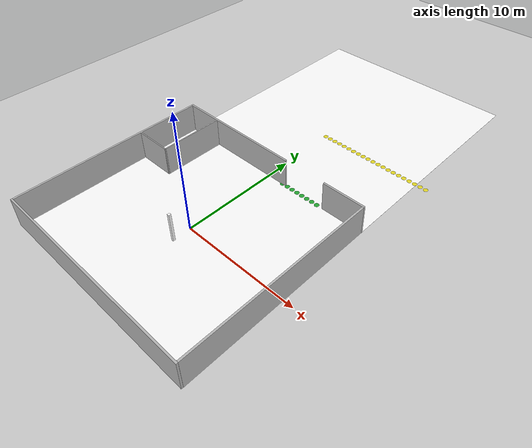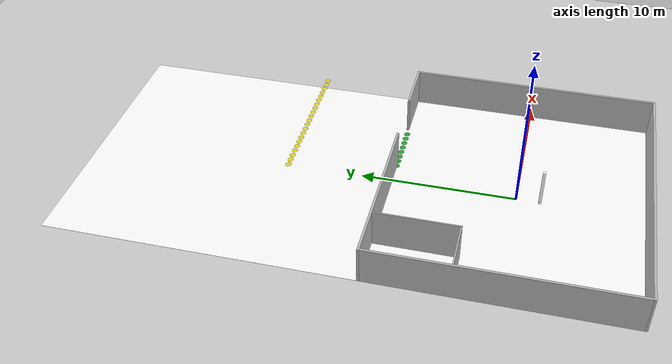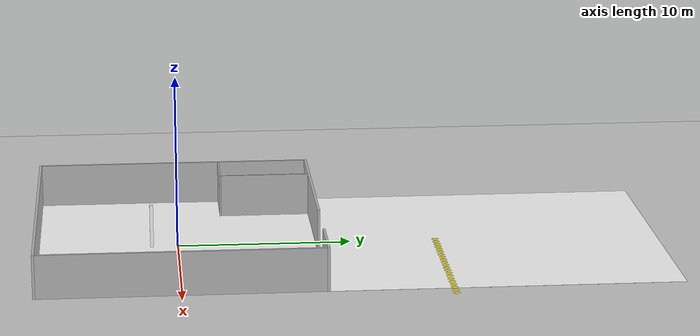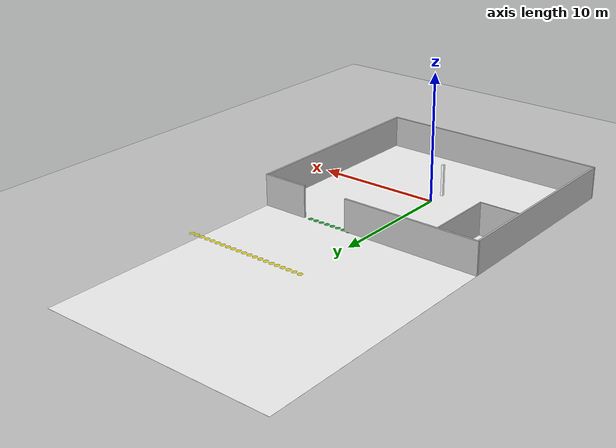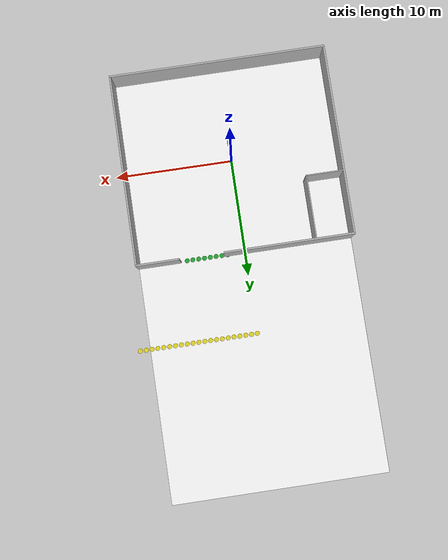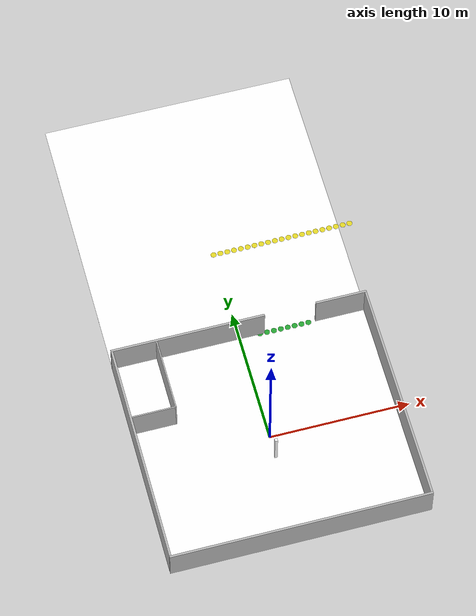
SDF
<sdf version="1.6">
 <world name="default">
  <include><uri>model://ground_plane</uri></include>
  <include><uri>model://sun</uri></include>
  <include><uri>model://highbay</uri></include>
  <include><uri>model://loop_1</uri></include>
 </world>
</sdf>

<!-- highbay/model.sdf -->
<sdf version="1.6">
<model name='highbay'>
  <static>true</static>
  <pose frame=''>0 0 0 0 -0 0</pose>

    <link name='Wall_1'>
      <collision name='Wall_1_Collision'>
        <geometry>
          <box>
            <size>3.6576 .15239 2.5</size>
          </box>
        </geometry>
        <pose frame=''>0 0 1.25 0 -0 0</pose>
      </collision>
      <visual name='Wall_1_Visual'>
        <pose frame=''>0 0 1.25 0 -0 0</pose>
        <geometry>
          <box>
            <size>3.6576 .15239 2.5</size>
          </box>
        </geometry>
        <material>
          <script>

            <uri>model://highbay/materials/scripts</uri>
            <uri>model://highbay/materials/textures</uri>
            <name>RepeatedTexture</name>

          </script>
        </material>
      </visual>
      <pose frame=''>7.323594 8.05 0 0 -0 0</pose>
    </link>

    <link name='Wall_1_5'>
      <collision name='Wall_1_5_Collision'>
        <geometry>
          <box>
            <size>10.9728 .15239 2.5</size>
          </box>
        </geometry>
        <pose frame=''>0 0 1.25 0 -0 0</pose>
      </collision>
      <visual name='Wall_1_5_Visual'>
        <pose frame=''>0 0 1.25 0 -0 0</pose>
        <geometry>
          <box>
            <size>10.9728 .15239 2.5</size>
          </box>
        </geometry>
        <material>
          <script>
            <uri>model://highbay/materials/scripts</uri>
            <uri>model://highbay/materials/textures</uri>
            <name>RepeatedTexture</name>
          </script>
        </material>
      </visual>
      <pose frame=''>-3.665994 8.05 0 0 -0 0</pose>
    </link>

    <link name='Wall_2'>
      <collision name='Wall_2_Collision'>
        <geometry>
          <box>
            <size>15.954375 .15239 2.5</size>
          </box>
        </geometry>
        <pose frame=''>0 0 1.25 0 -0 0</pose>
      </collision>
      <visual name='Wall_2_Visual'>
        <pose frame=''>0 0 1.25 0 -0 0</pose>
        <geometry>
          <box>
            <size>15.954375 .15239 2.5</size>
          </box>
        </geometry>
        <material>
          <script>
            <uri>model://highbay/materials/scripts</uri>
            <uri>model://highbay/materials/textures</uri>
            <name>RepeatedTexture</name>
          </script>
        </material>
      </visual>
      <pose frame=''>-9.076199 0 0 0 -0 1.57079632679</pose>
    </link>

    <link name='Wall_3'>
      <collision name='Wall_3_Collision'>
        <geometry>
          <box>
            <size>18.288 .15239 2.5</size>
          </box>
        </geometry>
        <pose frame=''>0 0 1.25 0 -0 0</pose>
      </collision>
      <visual name='Wall_3_Visual'>
        <pose frame=''>0 0 1.25 0 -0 0</pose>
        <geometry>
          <box>
            <size>18.288 .15239 2.5</size>
          </box>
        </geometry>
        <material>
          <script>
            <uri>model://highbay/materials/scripts</uri>
            <uri>model://highbay/materials/textures</uri>
            <name>RepeatedTexture</name>
          </script>
        </material>
      </visual>
      <pose frame=''>0 -8.05 0 0 -0 0</pose>
    </link>

    <link name='Wall_4'>
      <collision name='Wall_4_Collision'>
        <geometry>
          <box>
            <size>15.954375 .15239 2.5</size>
          </box>
        </geometry>
        <pose frame=''>0 0 1.25 0 -0 0</pose>
      </collision>
      <visual name='Wall_4_Visual'>
        <pose frame=''>0 0 1.25 0 -0 0</pose>
        <geometry>
          <box>
            <size>15.954375 .15239 2.5</size>
          </box>
        </geometry>
        <material>
          <script>
            <uri>model://highbay/materials/scripts</uri>
            <uri>model://highbay/materials/textures</uri>
            <name>RepeatedTexture</name>
          </script>
        </material>
      </visual>
      <pose frame=''>9.076199 0 0 0 -0 1.57079632679</pose>
    </link>

    <link name='Wall_5'>
      <collision name='Wall_5_Collision'>
        <geometry>
          <box>
            <size>3.07975 .092075 2.5</size>
          </box>
        </geometry>
        <pose frame=''>0 0 1.25 0 -0 0</pose>
      </collision>
      <visual name='Wall_5_Visual'>
        <pose frame=''>0 0 1.25 0 -0 0</pose>
        <geometry>
          <box>
            <size>3.07975 .092075 2.5</size>
          </box>
        </geometry>
        <material>
          <script>
            <uri>model://highbay/materials/scripts</uri>
            <uri>model://highbay/materials/textures</uri>
            <name>RepeatedTexture</name>
          </script>
        </material>
      </visual>
      <pose frame=''>-7.460129 2.7144175 0 0 -0 0</pose>
    </link>

  <link name='Wall_6'>
    <collision name='Wall_6_Collision'>
      <geometry>
        <box>
          <size>.092075 .092075 2.5</size>
        </box>
      </geometry>
      <pose frame=''>0 0 1.25 0 -0 0</pose>
    </collision>
    <visual name='Wall_6_Visual'>
      <pose frame=''>0 0 1.25 0 -0 0</pose>
      <geometry>
        <box>
          <size>.092075 .092075 2.5</size>
        </box>
      </geometry>
      <material>
        <script>
          <uri>model://highbay/materials/scripts</uri>
          <uri>model://highbay/materials/textures</uri>
          <name>RepeatedTexture</name>
        </script>
      </material>
    </visual>
    <pose frame=''>-5.911379 2.7144175 0 0 -0 1.5708</pose>
  </link>

  <link name='Wall_7'>
    <collision name='Wall_7_Collision'>
      <geometry>
        <box>
          <size>5.21335 .092075 2.5</size>
        </box>
      </geometry>
      <pose frame=''>0 0 1.25 0 -0 0</pose>
    </collision>
    <visual name='Wall_7_Visual'>
      <pose frame=''>0 0 1.25 0 -0 0</pose>
      <geometry>
        <box>
          <size>5.21335 .092075 2.5</size>
        </box>
      </geometry>
      <material>
        <script>
          <uri>model://highbay/materials/scripts</uri>
          <uri>model://highbay/materials/textures</uri>
          <name>RepeatedTexture</name>
        </script>
      </material>
    </visual>
    <pose frame=''>-5.911379 5.36713 0 0 -0 1.5708</pose>
  </link>

  <link name='Pillar'>
    <collision name='Pillar_Collision'>
      <geometry>
        <box>
          <size>0.2 0.2 2.5</size>
        </box>
      </geometry>
      <pose frame=''>0 0 1.25 0 -0 0</pose>
    </collision>
    <visual name='Pillar_Visual'>
      <pose frame=''>0 0 1.25 0 -0 0</pose>
      <geometry>
        <box>
          <size>0.2 0.2 2.5</size>
        </box>
      </geometry>
      <material>
        <script>
          <uri>model://highbay/materials/scripts</uri>
          <uri>model://highbay/materials/textures</uri>
          <name>RepeatedTexture</name>
        </script>
        <ambient>1 1 1 1</ambient>
      </material>
      <meta>
        <layer>0</layer>
      </meta>
    </visual>
    <pose frame=''>.008394 -1.5 0 0 -0 -1.5708</pose>
  </link>

  <link name='Floor'>
    <collision name='Floor_Collision'>
      <geometry>
        <box>
          <size>18.288  36 .005</size>
        </box>
      </geometry>
      <pose frame=''>0 10 1.25 0 -0 0</pose>
    </collision>
    <visual name='Floor_Visual'>
      <pose frame=''>0 10 1.25 0 -0 0</pose>
      <geometry>
        <box>
          <size>18.288 36 .005</size>
        </box>
      </geometry>
      <material>
        <script>
          <uri>model://highbay/materials/scripts</uri>
          <uri>model://highbay/materials/textures</uri>
          <name>RepeatedFloor</name>
        </script>
        <ambient>1 1 1 1</ambient>
      </material>
      <meta>
        <layer>0</layer>
      </meta>
    </visual>
    <pose frame=''>0 0 -1.25 0 -0 0</pose>
  </link>

</model>
</sdf>

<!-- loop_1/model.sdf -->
<sdf version="1.6">
	<model name="highbay_loop1">
		<static>true</static>
		<link name="inner_loop">

			<visual name="point0">
				<pose>0 15 0.01 0 0 0</pose>
				<geometry>
					<cylinder>
						<radius>0.2</radius>
						<length>0.001</length>
					</cylinder>
				</geometry>
				<material>
					<script>
						<uri>file://media/materials/scripts/gazebo.material</uri>
						<name>Gazebo/Yellow</name>
					</script>
				</material>
			</visual>

			<visual name="point1">
				<pose>0.5 15 0.01 0 0 0</pose>
				<geometry>
					<cylinder>
						<radius>0.2</radius>
						<length>0.001</length>
					</cylinder>
				</geometry>
				<material>
					<script>
						<uri>file://media/materials/scripts/gazebo.material</uri>
						<name>Gazebo/Yellow</name>
					</script>
				</material>
			</visual>

			<visual name="point2">
				<pose>1 15 0.01 0 0 0</pose>
				<geometry>
					<cylinder>
						<radius>0.2</radius>
						<length>0.001</length>
					</cylinder>
				</geometry>
				<material>
					<script>
						<uri>file://media/materials/scripts/gazebo.material</uri>
						<name>Gazebo/Yellow</name>
					</script>
				</material>
			</visual>

			<visual name="point3">
				<pose>1.5 15 0.01 0 0 0</pose>
				<geometry>
					<cylinder>
						<radius>0.2</radius>
						<length>0.001</length>
					</cylinder>
				</geometry>
				<material>
					<script>
						<uri>file://media/materials/scripts/gazebo.material</uri>
						<name>Gazebo/Yellow</name>
					</script>
				</material>
			</visual>

			<visual name="point4">
				<pose>2 15 0.01 0 0 0</pose>
				<geometry>
					<cylinder>
						<radius>0.2</radius>
						<length>0.001</length>
					</cylinder>
				</geometry>
				<material>
					<script>
						<uri>file://media/materials/scripts/gazebo.material</uri>
						<name>Gazebo/Yellow</name>
					</script>
				</material>
			</visual>

			<visual name="point5">
				<pose>2.5 15 0.01 0 0 0</pose>
				<geometry>
					<cylinder>
						<radius>0.2</radius>
						<length>0.001</length>
					</cylinder>
				</geometry>
				<material>
					<script>
						<uri>file://media/materials/scripts/gazebo.material</uri>
						<name>Gazebo/Yellow</name>
					</script>
				</material>
			</visual>

			<visual name="point6">
				<pose>3 15 0.01 0 0 0</pose>
				<geometry>
					<cylinder>
						<radius>0.2</radius>
						<length>0.001</length>
					</cylinder>
				</geometry>
				<material>
					<script>
						<uri>file://media/materials/scripts/gazebo.material</uri>
						<name>Gazebo/Yellow</name>
					</script>
				</material>
			</visual>

			<visual name="point7">
				<pose>3.5 15 0.01 0 0 0</pose>
				<geometry>
					<cylinder>
						<radius>0.2</radius>
						<length>0.001</length>
					</cylinder>
				</geometry>
				<material>
					<script>
						<uri>file://media/materials/scripts/gazebo.material</uri>
						<name>Gazebo/Yellow</name>
					</script>
				</material>
			</visual>

			<visual name="point8">
				<pose>4 15 0.01 0 0 0</pose>
				<geometry>
					<cylinder>
						<radius>0.2</radius>
						<length>0.001</length>
					</cylinder>
				</geometry>
				<material>
					<script>
						<uri>file://media/materials/scripts/gazebo.material</uri>
						<name>Gazebo/Yellow</name>
					</script>
				</material>
			</visual>

			<visual name="point9">
				<pose>4.5 15 0.01 0 0 0</pose>
				<geometry>
					<cylinder>
						<radius>0.2</radius>
						<length>0.001</length>
					</cylinder>
				</geometry>
				<material>
					<script>
						<uri>file://media/materials/scripts/gazebo.material</uri>
						<name>Gazebo/Yellow</name>
					</script>
				</material>
			</visual>

			<visual name="point10">
				<pose>5 15 0.01 0 0 0</pose>
				<geometry>
					<cylinder>
						<radius>0.2</radius>
						<length>0.001</length>
					</cylinder>
				</geometry>
				<material>
					<script>
						<uri>file://media/materials/scripts/gazebo.material</uri>
						<name>Gazebo/Yellow</name>
					</script>
				</material>
			</visual>

			<visual name="point11">
				<pose>5.5 15 0.01 0 0 0</pose>
				<geometry>
					<cylinder>
						<radius>0.2</radius>
						<length>0.001</length>
					</cylinder>
				</geometry>
				<material>
					<script>
						<uri>file://media/materials/scripts/gazebo.material</uri>
						<name>Gazebo/Yellow</name>
					</script>
				</material>
			</visual>

			<visual name="point12">
				<pose>6 15 0.01 0 0 0</pose>
				<geometry>
					<cylinder>
						<radius>0.2</radius>
						<length>0.001</length>
					</cylinder>
				</geometry>
				<material>
					<script>
						<uri>file://media/materials/scripts/gazebo.material</uri>
						<name>Gazebo/Yellow</name>
					</script>
				</material>
			</visual>

			<visual name="point13">
				<pose>6.5 15 0.01 0 0 0</pose>
				<geometry>
					<cylinder>
						<radius>0.2</radius>
						<length>0.001</length>
					</cylinder>
				</geometry>
				<material>
					<script>
						<uri>file://media/materials/scripts/gazebo.material</uri>
						<name>Gazebo/Yellow</name>
					</script>
				</material>
			</visual>

			<visual name="point14">
				<pose>7 15 0.01 0 0 0</pose>
				<geometry>
					<cylinder>
						<radius>0.2</radius>
						<length>0.001</length>
					</cylinder>
				</geometry>
				<material>
					<script>
						<uri>file://media/materials/scripts/gazebo.material</uri>
						<name>Gazebo/Yellow</name>
					</script>
				</material>
			</visual>

			<visual name="point15">
				<pose>7.5 15 0.01 0 0 0</pose>
				<geometry>
					<cylinder>
						<radius>0.2</radius>
						<length>0.001</length>
					</cylinder>
				</geometry>
				<material>
					<script>
						<uri>file://media/materials/scripts/gazebo.material</uri>
						<name>Gazebo/Yellow</name>
					</script>
				</material>
			</visual>

			<visual name="point16">
				<pose>8 15 0.01 0 0 0</pose>
				<geometry>
					<cylinder>
						<radius>0.2</radius>
						<length>0.001</length>
					</cylinder>
				</geometry>
				<material>
					<script>
						<uri>file://media/materials/scripts/gazebo.material</uri>
						<name>Gazebo/Yellow</name>
					</script>
				</material>
			</visual>

			<visual name="point17">
				<pose>8.5 15 0.01 0 0 0</pose>
				<geometry>
					<cylinder>
						<radius>0.2</radius>
						<length>0.001</length>
					</cylinder>
				</geometry>
				<material>
					<script>
						<uri>file://media/materials/scripts/gazebo.material</uri>
						<name>Gazebo/Yellow</name>
					</script>
				</material>
			</visual>

			<visual name="point18">
				<pose>9 15 0.01 0 0 0</pose>
				<geometry>
					<cylinder>
						<radius>0.2</radius>
						<length>0.001</length>
					</cylinder>
				</geometry>
				<material>
					<script>
						<uri>file://media/materials/scripts/gazebo.material</uri>
						<name>Gazebo/Yellow</name>
					</script>
				</material>
			</visual>

			<visual name="point19">
				<pose>9.5 15 0.01 0 0 0</pose>
				<geometry>
					<cylinder>
						<radius>0.2</radius>
						<length>0.001</length>
					</cylinder>
				</geometry>
				<material>
					<script>
						<uri>file://media/materials/scripts/gazebo.material</uri>
						<name>Gazebo/Yellow</name>
					</script>
				</material>
			</visual>

			<visual name="point20">
				<pose>10 15 0.01 0 0 0</pose>
				<geometry>
					<cylinder>
						<radius>0.2</radius>
						<length>0.001</length>
					</cylinder>
				</geometry>
				<material>
					<script>
						<uri>file://media/materials/scripts/gazebo.material</uri>
						<name>Gazebo/Yellow</name>
					</script>
				</material>
			</visual>

			<visual name="entry0">
				<pose>5 8 0.01 0 0 0</pose>
				<geometry>
					<cylinder>
						<radius>0.2</radius>
						<length>0.001</length>
					</cylinder>
				</geometry>
				<material>
					<script>
						<uri>file://media/materials/scripts/gazebo.material</uri>
						<name>Gazebo/Green</name>
					</script>
				</material>
			</visual>

			<visual name="entry1">
				<pose>4.5 8 0.01 0 0 0</pose>
				<geometry>
					<cylinder>
						<radius>0.2</radius>
						<length>0.001</length>
					</cylinder>
				</geometry>
				<material>
					<script>
						<uri>file://media/materials/scripts/gazebo.material</uri>
						<name>Gazebo/Green</name>
					</script>
				</material>
			</visual>

			<visual name="entry2">
				<pose>4 8 0.01 0 0 0</pose>
				<geometry>
					<cylinder>
						<radius>0.2</radius>
						<length>0.001</length>
					</cylinder>
				</geometry>
				<material>
					<script>
						<uri>file://media/materials/scripts/gazebo.material</uri>
						<name>Gazebo/Green</name>
					</script>
				</material>
			</visual>

			<visual name="entry3">
				<pose>3.5 8 0.01 0 0 0</pose>
				<geometry>
					<cylinder>
						<radius>0.2</radius>
						<length>0.001</length>
					</cylinder>
				</geometry>
				<material>
					<script>
						<uri>file://media/materials/scripts/gazebo.material</uri>
						<name>Gazebo/Green</name>
					</script>
				</material>
			</visual>

			<visual name="entry4">
				<pose>3 8 0.01 0 0 0</pose>
				<geometry>
					<cylinder>
						<radius>0.2</radius>
						<length>0.001</length>
					</cylinder>
				</geometry>
				<material>
					<script>
						<uri>file://media/materials/scripts/gazebo.material</uri>
						<name>Gazebo/Green</name>
					</script>
				</material>
			</visual>

			<visual name="entry5">
				<pose>2.5 8 0.01 0 0 0</pose>
				<geometry>
					<cylinder>
						<radius>0.2</radius>
						<length>0.001</length>
					</cylinder>
				</geometry>
				<material>
					<script>
						<uri>file://media/materials/scripts/gazebo.material</uri>
						<name>Gazebo/Green</name>
					</script>
				</material>
			</visual>

			<visual name="entry6">
				<pose>2 8 0.01 0 0 0</pose>
				<geometry>
					<cylinder>
						<radius>0.2</radius>
						<length>0.001</length>
					</cylinder>
				</geometry>
				<material>
					<script>
						<uri>file://media/materials/scripts/gazebo.material</uri>
						<name>Gazebo/Green</name>
					</script>
				</material>
			</visual>

			<visual name="entry7">
				<pose>1.5 8 0.01 0 0 0</pose>
				<geometry>
					<cylinder>
						<radius>0.2</radius>
						<length>0.001</length>
					</cylinder>
				</geometry>
				<material>
					<script>
						<uri>file://media/materials/scripts/gazebo.material</uri>
						<name>Gazebo/Green</name>
					</script>
				</material>
			</visual>

		</link>
	</model>
</sdf>
